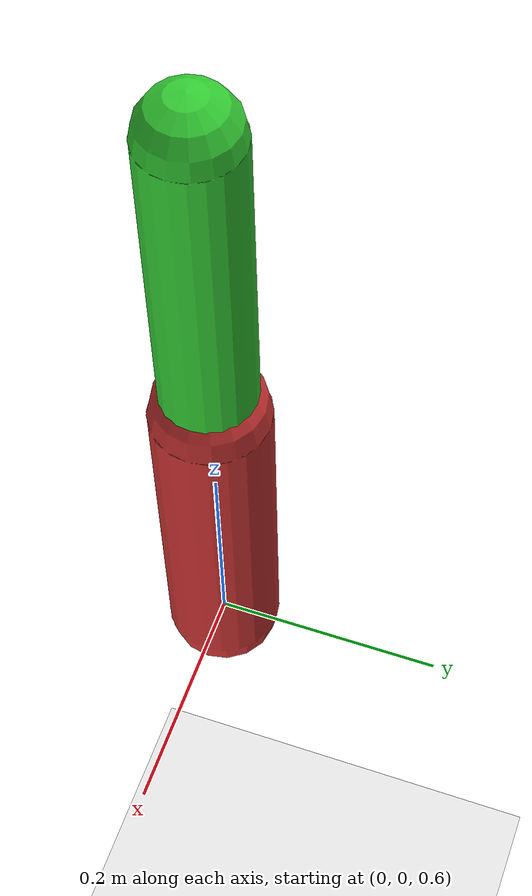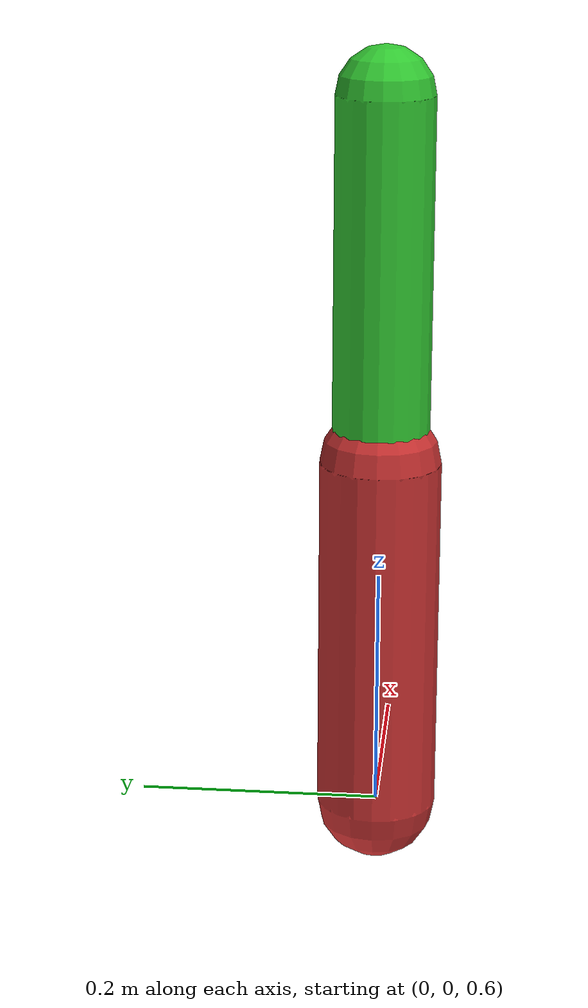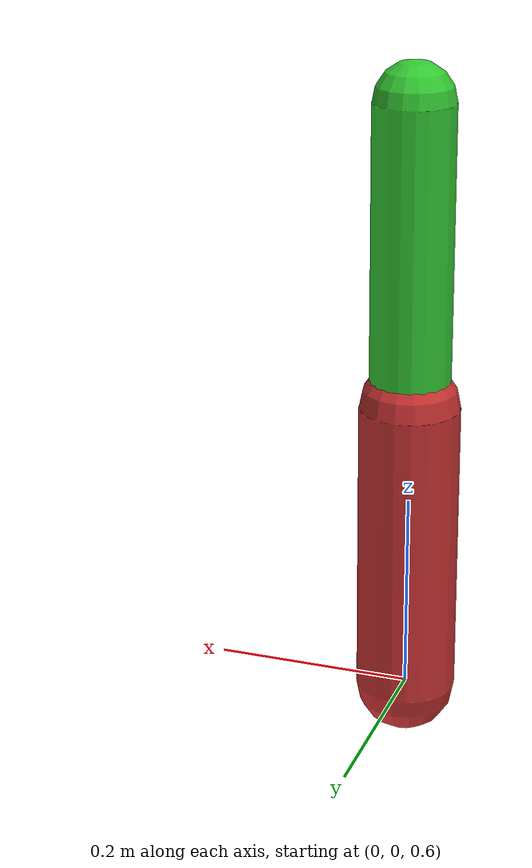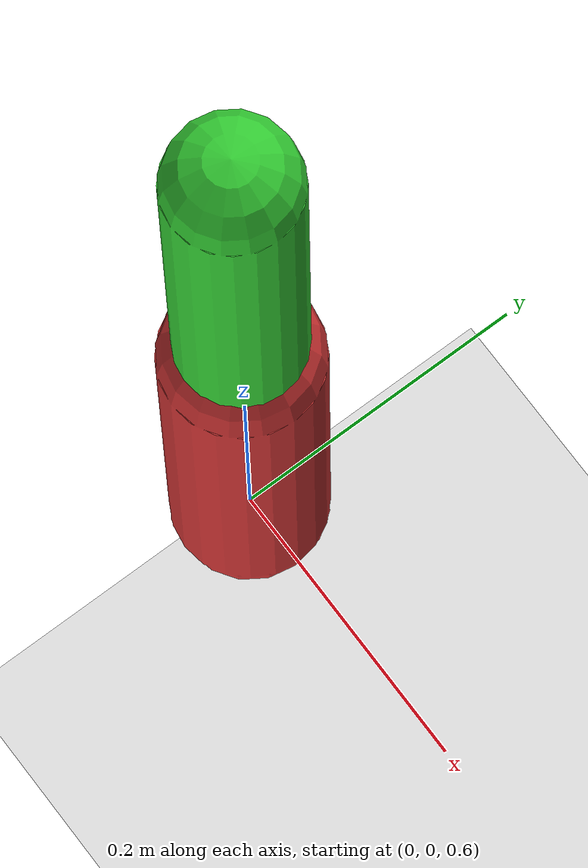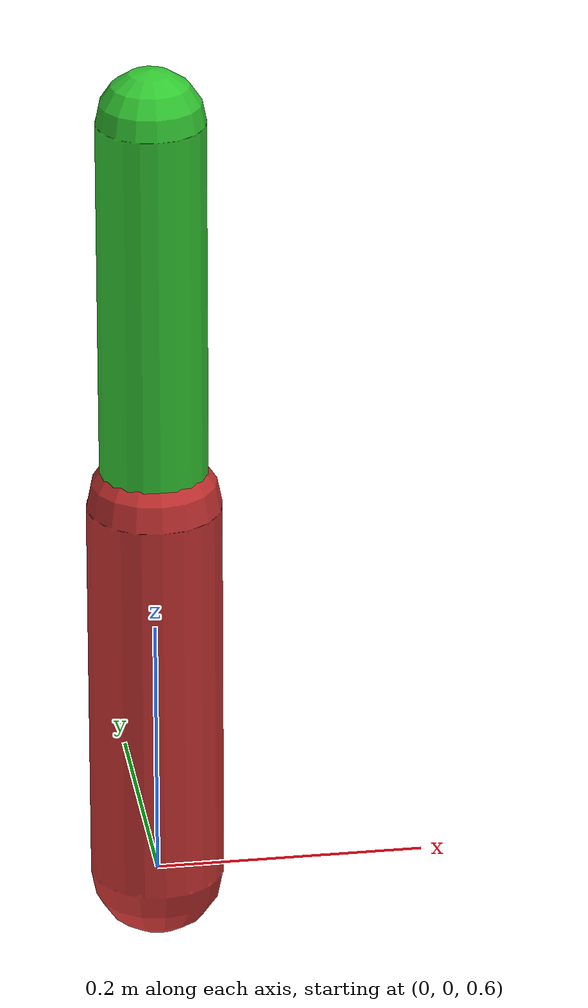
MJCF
<mujoco>
  <option timestep="0.01"/>
  <worldbody>
    <light diffuse=".5 .5 .5" pos="0 0 3" dir="0 0 -1"/>
    <geom type="plane" size="2 2 0.1" rgba=".9 .9 .9 1"/>
    <body name="torso" pos="0 0 0.6">
      <joint name="root" type="free"/>
      <geom type="capsule" size="0.05" fromto="0 0 0 0 0 0.3" rgba=".8 .2 .2 1"/>
      <body name="thigh" pos="0 0 0.3">
        <joint name="hip" type="hinge" pos="0 0 0" axis="0 1 0"/>
        <geom type="capsule" size="0.04" fromto="0 0 0 0 0 0.3" rgba=".2 .8 .2 1"/>
      </body>
    </body>
  </worldbody>
  <actuator>
    <motor joint="hip" ctrlrange="-1 1" ctrllimited="true"/>
  </actuator>
</mujoco>
